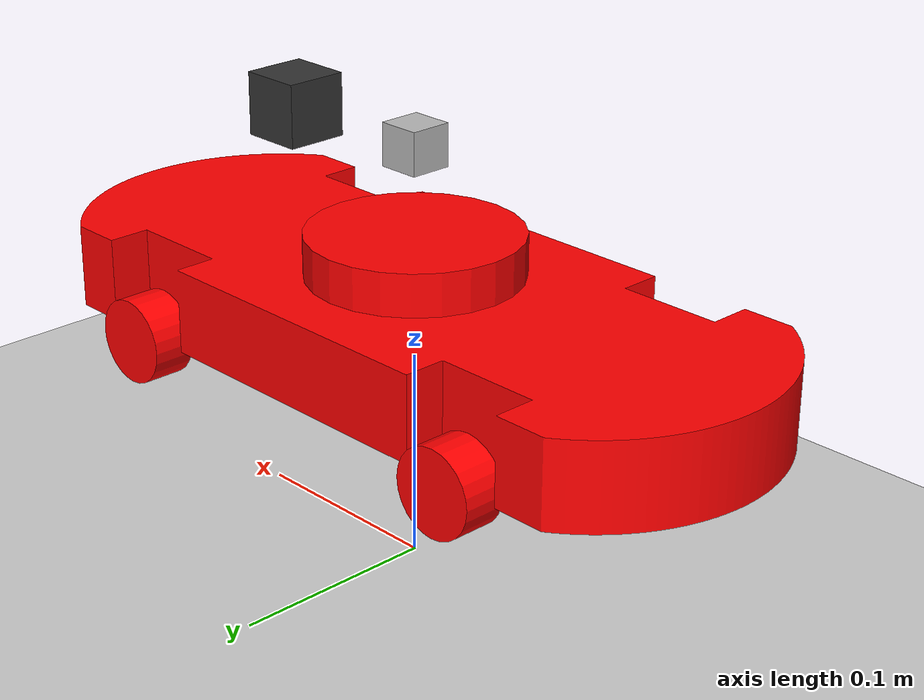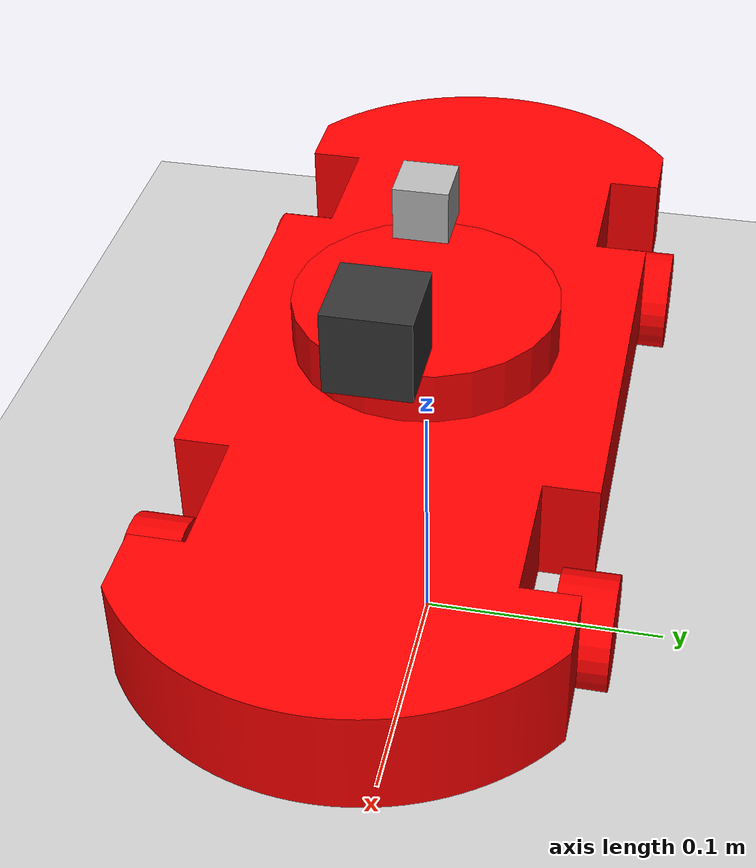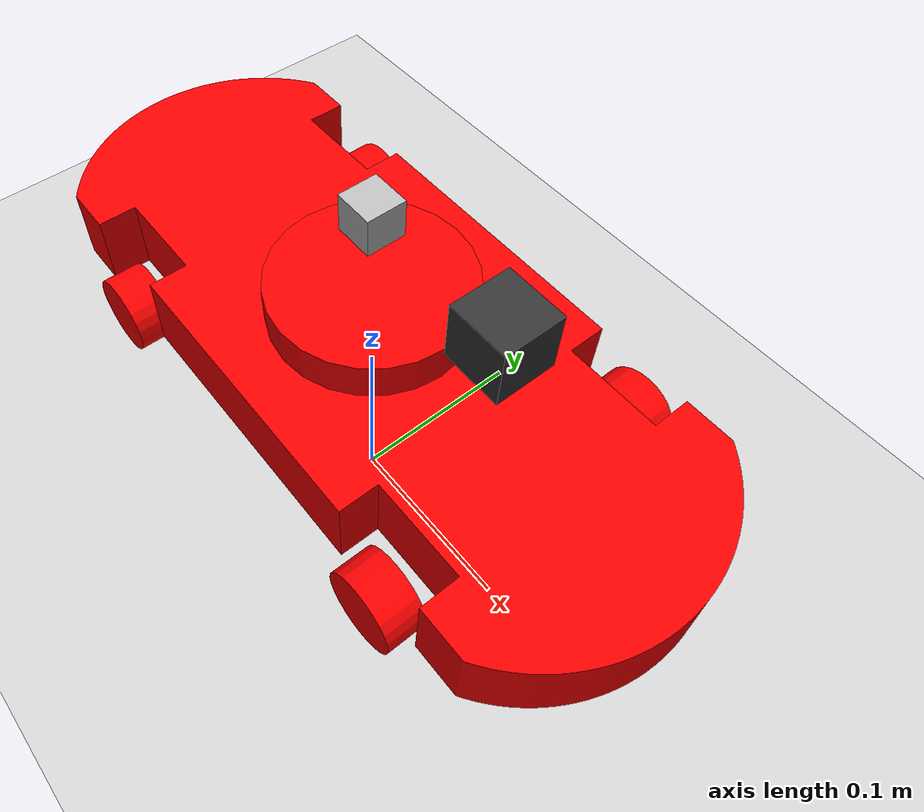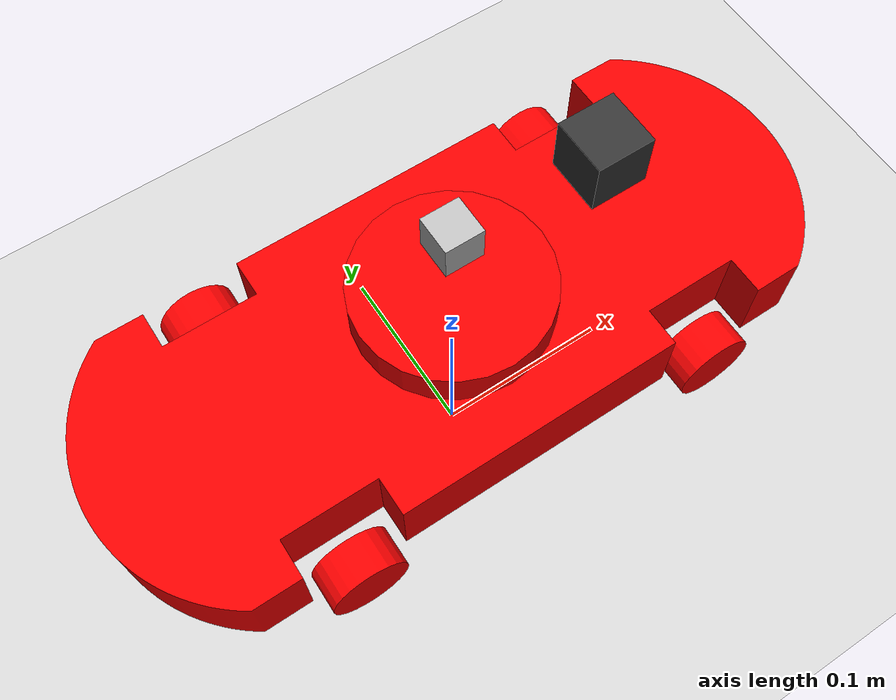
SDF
<?xml version='1.0'?>
<sdf version='1.11'>
  <world name='default'>

  <!-- DEFAULTS -->
  <plugin filename="gz-sim-user-commands-system" name="gz::sim::systems::UserCommands"></plugin>
  <plugin filename="gz-sim-physics-system" name="gz::sim::systems::Physics"></plugin>
  <plugin filename="gz-sim-sensors-system" name="gz::sim::systems::Sensors"></plugin>
  <plugin filename="gz-sim-scene-broadcaster-system" name="gz::sim::systems::SceneBroadcaster"></plugin>

	<plugin filename="gz-sim-imu-system" name="gz::sim::systems::Imu">
		<initial_orientation_as_reference>false</initial_orientation_as_reference>
	</plugin>

	<!-- Include robot and groundplane and that's it -->
	<include>
		<uri>model://robot</uri>
		<pose>0 0 0.1 0 0 0</pose>
	</include>

    <model name="ground">
		<static>true</static>
		<pose>0 0 0 0 0 0</pose>
      	<link name="link">

        <collision name="collision">
          <geometry>
            <plane>
              <normal>0 0 1</normal>
              <size>20 20</size>
            </plane>
          </geometry>
        </collision>

        <visual name="visual">
          <geometry>
            <plane>
              <normal>0 0 1</normal>
              <size>20 20</size>
            </plane>
		</geometry>
        </visual>
      </link>
    </model>

    <physics name="1ms" type="ignored">
      <max_step_size>0.001</max_step_size>
      <real_time_factor>1.0</real_time_factor>
    </physics>

    <light type="directional" name="sun">
      <cast_shadows>true</cast_shadows>
      <pose>0 0 10 0 0 0</pose>
      <diffuse>0.8 0.8 0.8 1</diffuse>
      <specular>0.2 0.2 0.2 1</specular>
      <attenuation>
        <range>1000</range>
        <constant>0.9</constant>
        <linear>0.01</linear>
        <quadratic>0.001</quadratic>
      </attenuation>
      <direction>-0.5 0.1 -0.9</direction>
    </light>

  </world>
</sdf>

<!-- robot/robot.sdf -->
<sdf version='1.11'>
  <model name='robotmodel'>
    <link name='robot-base'>
      <pose>0 0 0 0 0 0</pose>
      <visual name='robot-base-v'>
        <!-- mesh -->
        <geometry>
          <mesh>
			  <uri>model://robot/meshes/robot_base.stl</uri>
            <scale>0.001 0.001 0.001</scale>
          </mesh>
        </geometry>
        <material>
          <diffuse>1 0 0 1</diffuse>
          <ambient>1 0 0 1</ambient>
          <!-- specular -->
        </material>
      </visual>
      <collision name='robot-base-c'>
        <geometry>
          <mesh>
			  <uri>model://robot/meshes/robot_base.stl</uri>
            <scale>0.001 0.001 0.001</scale>
          </mesh>
        </geometry>
      </collision>
      <inertial auto='true'>
        <mass>1000</mass>
      </inertial>
    </link>

		<link name='wheel-frontleft'>
      <pose degrees='true'>0.1 0.075 0 90 0 0</pose>
      <visual name='robot-frontleft-v'>
        <!-- mesh -->
        <geometry>
					<cylinder>
						<radius>0.02</radius>
						<length>0.02</length>
					</cylinder>
        </geometry>
        <material>
          <diffuse>1 0 0 1</diffuse>
          <ambient>1 0 0 1</ambient>
          <!-- specular -->
        </material>
      </visual>
      <collision name='robot-frontleft-c'>
        <geometry>
					<!-- NOTE Different geometries for collision and visual -->
					<sphere>
						<radius>0.02</radius>
					</sphere>
        </geometry>
      </collision>
      <inertial auto='true'>
        <mass>1</mass>
      </inertial>
	</link>

	<link name='wheel-backleft'>
      <pose degrees='true'>-0.1 0.075 0 -90 0 0</pose>
      <visual name='robot-backleft-v'>
        <!-- mesh -->
        <geometry>
					<cylinder>
						<radius>0.02</radius>
						<length>0.02</length>
					</cylinder>
        </geometry>
        <material>
          <diffuse>1 0 0 1</diffuse>
          <ambient>1 0 0 1</ambient>
          <!-- specular -->
        </material>
      </visual>
      <collision name='robot-backleft-c'>
        <geometry>
					<cylinder>
						<radius>0.02</radius>
						<length>0.02</length>
					</cylinder>
        </geometry>
      </collision>
      <inertial auto='true'>
        <mass>1</mass>
      </inertial>
	</link>

	<link name='wheel-frontright'>
      <pose degrees='true'>0.1 -0.075 0 90 0 0</pose>
      <visual name='robot-frontright-v'>
        <!-- mesh -->
        <geometry>
			<cylinder>
				<radius>0.02</radius>
				<length>0.02</length>
			</cylinder>
        </geometry>
        <material>
          <diffuse>1 0 0 1</diffuse>
          <ambient>1 0 0 1</ambient>
          <!-- specular -->
        </material>
      </visual>
      <collision name='robot-frontright-c'>
        <geometry>
					<!-- NOTE Different geometries for collision and visual -->
					<sphere>
						<radius>0.02</radius>
					</sphere>
        </geometry>
      </collision>
      <inertial auto='true'>
        <mass>1</mass>
      </inertial>
	</link>

	<link name='wheel-backright'>
      <pose degrees='true'>-0.1 -0.075 0 -90 0 0</pose>
      <visual name='robot-backright-v'>
        <!-- mesh -->
        <geometry>
			<cylinder>
				<radius>0.02</radius>
				<length>0.02</length>
			</cylinder>
        </geometry>
        <material>
          <diffuse>1 0 0 1</diffuse>
          <ambient>1 0 0 1</ambient>
          <!-- specular -->
        </material>
      </visual>
      <collision name='robot-backright-c'>
        <geometry>
			<cylinder>
				<radius>0.02</radius>
				<length>0.02</length>
			</cylinder>
        </geometry>
      </collision>
      <inertial auto='true'>
        <mass>1</mass>
      </inertial>
	</link>

    <joint name='frontleft' type='ball'>
      <pose>0 0 0 0 0 0</pose>
      <parent>robot-base</parent>
      <child>wheel-frontleft</child>
      <axis>
        <xyz>0 0 1</xyz>
      </axis>
    </joint>

    <joint name='frontright' type='ball'>
      <pose>0 0 0 0 0 0</pose>
      <parent>robot-base</parent>
      <child>wheel-frontright</child>
      <axis>
        <xyz>0 0 1</xyz>
      </axis>
    </joint>

    <joint name='backleft' type='revolute'>
      <pose>0 0 0 0 0 0</pose>
      <parent>robot-base</parent>
      <child>wheel-backleft</child>
      <axis>
        <xyz>0 0 1</xyz>
      </axis>
    </joint>

    <joint name='backright' type='revolute'>
      <pose>0 0 0 0 0 0</pose>
      <parent>robot-base</parent>
      <child>wheel-backright</child>
      <axis>
        <xyz>0 0 1</xyz>
      </axis>
    </joint>

	<link name='robot-lidar'>
		<pose>0 0 0.05 0 0 0</pose>
      <visual name='robot-lidar-v'>
        <!-- mesh -->
        <geometry>
			<cylinder>
				<radius>0.05 </radius>
				<length>0.02 </length>
			</cylinder>
        </geometry>
        <material>
          <diffuse>1 0 0 1</diffuse>
          <ambient>1 0 0 1</ambient>
          <!-- specular -->
        </material>
      </visual>
      <collision name='robot-base-c'>
        <geometry>
			<cylinder>
				<radius>0.05 </radius>
				<length>0.02 </length>
			</cylinder>
        </geometry>
      </collision>

		<sensor name='robot-lidar' type='gpu_lidar'>
			<topic>lidar</topic>
			<update_rate>5</update_rate>
			<always_on>true</always_on>
			<visualize>true</visualize>
			<ray>
				<scan>
					<horizontal>
						<samples>360</samples>
						<resolution>1.00</resolution>
						<min_angle>0.000</min_angle>
						<max_angle>6.280</max_angle>
					</horizontal>
				</scan>
				<range>
					<min>0.12</min>
					<max>10</max>
					<resolution>0.01500</resolution>
				</range>
        <noise>
          <type>gaussian</type>
          <mean>0.0</mean>
          <stddev>0.01</stddev>
        </noise>
			</ray>
		</sensor>
	</link>

    <joint name='lidarjoint' type='fixed'>
      <pose>0 0 0 0 0 0</pose>
      <parent>robot-base</parent>
      <child>robot-lidar</child>
      <axis>
        <xyz>1 0 0</xyz>
      </axis>
    </joint>

    <plugin filename="gz-sim-diff-drive-system" name="gz::sim::systems::DiffDrive">
        <left_joint>backleft</left_joint>
        <right_joint>backright</right_joint>
        <wheel_separation>0.15</wheel_separation>
        <wheel_radius>0.02</wheel_radius>

		<!-- Only change these to the frames if we want to use the wheel odom as a sole source -->
		<frame_id>odom</frame_id>
		<child_frame_id>base_link</child_frame_id>
		<tf_topic>/tf</tf_topic>

        <max_linear_acceleration>1</max_linear_acceleration>
        <min_linear_acceleration>-1</min_linear_acceleration>
        <max_angular_acceleration>2</max_angular_acceleration>
        <min_angular_acceleration>-2</min_angular_acceleration>
        <max_linear_velocity>0.5</max_linear_velocity>
        <min_linear_velocity>-0.5</min_linear_velocity>
        <max_angular_velocity>1</max_angular_velocity>
        <min_angular_velocity>-1</min_angular_velocity>
      </plugin>

	  <!-- camera link -->

	  <link name="camera_front">
		  <pose>0.08 0 0.1 0 0 0</pose>
		    <inertial>
			<mass>0.05</mass>
			<inertia>
			  <ixx>0.0001</ixx>
			  <iyy>0.0001</iyy>
			  <izz>0.0001</izz>
			  <ixy>0</ixy>
			  <ixz>0</ixz>
			  <iyz>0</iyz>
			</inertia>
		  </inertial>

		  <visual name="camera_visual">
			<geometry>
			  <box>
				<size>0.03 0.03 0.03</size>
			  </box>
			</geometry>
			<material>
			  <ambient>0.1 0.1 0.1 1</ambient>
			  <diffuse>0.2 0.2 0.2 1</diffuse>
			</material>
		  </visual>

		  <collision name="camera_collision">
			<geometry>
			  <box>
				<size>0.03 0.03 0.03</size>
			  </box>
			</geometry>
		  </collision>

		  <sensor name="front_camera" type="camera">
			<pose>0 0 0 0 0 0</pose>
			<always_on>true</always_on>
			<update_rate>30</update_rate>
			<visualize>true</visualize>

			<camera>
			  <horizontal_fov>1.5708</horizontal_fov>
			  <image>
				<width>1280</width>
				<height>720</height>
				<format>R8G8B8</format>
			  </image>
			  <clip>
				<near>0.05</near>
				<far>50.0</far>
			  </clip>
			</camera>
		  </sensor>
	  </link>

	<link name="imu">
		<pose>0 0 0.1 0 0 0 </pose>
		<visual name="imu-v">
			<geometry>
				<box><size>0.02 0.02 0.02</size></box>
			</geometry>
		</visual>
		<collision name="imu-c">
			<geometry>
				<box><size>0.02 0.02 0.02</size></box>
			</geometry>
		</collision>

		<sensor name="imu-sensor" type="imu">
			<topic>imu</topic>
			<update_rate>100</update_rate>
			<always_on>true</always_on>
			<visualize>true</visualize>
			<imu>
        <angular_velocity>
          <x>
            <noise type="gaussian">
              <mean>0.0</mean>
              <stddev>2e-4</stddev>
              <bias_mean>0.0000075</bias_mean>
              <bias_stddev>0.0000008</bias_stddev>
            </noise>
          </x>
          <y>
            <noise type="gaussian">
              <mean>0.0</mean>
              <stddev>2e-4</stddev>
              <bias_mean>0.0000075</bias_mean>
              <bias_stddev>0.0000008</bias_stddev>
            </noise>
          </y>
          <z>
            <noise type="gaussian">
              <mean>0.0</mean>
              <stddev>2e-4</stddev>
              <bias_mean>0.0000075</bias_mean>
              <bias_stddev>0.0000008</bias_stddev>
            </noise>
          </z>
        </angular_velocity>
        <linear_acceleration>
          <x>
            <noise type="gaussian">
              <mean>0.0</mean>
              <stddev>1.7e-2</stddev>
              <bias_mean>0.1</bias_mean>
              <bias_stddev>0.001</bias_stddev>
            </noise>
          </x>
          <y>
            <noise type="gaussian">
              <mean>0.0</mean>
              <stddev>1.7e-2</stddev>
              <bias_mean>0.1</bias_mean>
              <bias_stddev>0.001</bias_stddev>
            </noise>
          </y>
          <z>
            <noise type="gaussian">
              <mean>0.0</mean>
              <stddev>1.7e-2</stddev>
              <bias_mean>0.1</bias_mean>
              <bias_stddev>0.001</bias_stddev>
            </noise>
          </z>
        </linear_acceleration>
      </imu>
		</sensor>
	</link>

    <joint name='imujoint' type='fixed'>
      <pose>0 0 0 0 0 0</pose>
      <parent>robot-base</parent>
      <child>imu</child>
      <axis>
        <xyz>1 0 0</xyz>
      </axis>
  </joint>

    <joint name='camerajoint' type='fixed'>
      <pose>0 0 0 0 0 0</pose>
      <parent>robot-base</parent>
      <child>camera_front</child>
      <axis>
        <xyz>1 0 0</xyz>
      </axis>
    </joint>

  </model>
</sdf>
